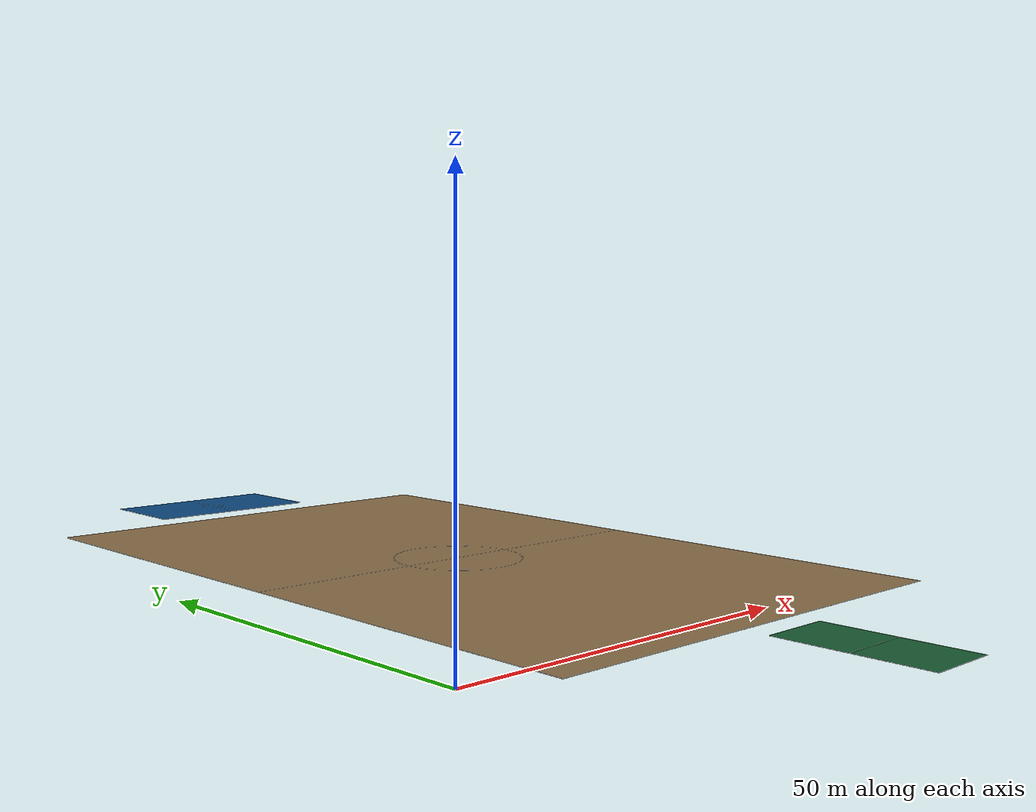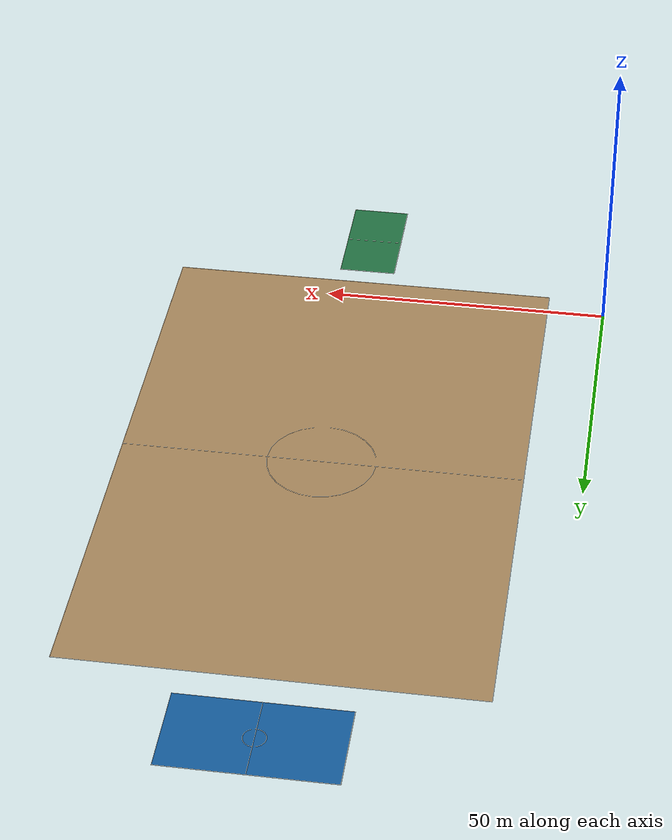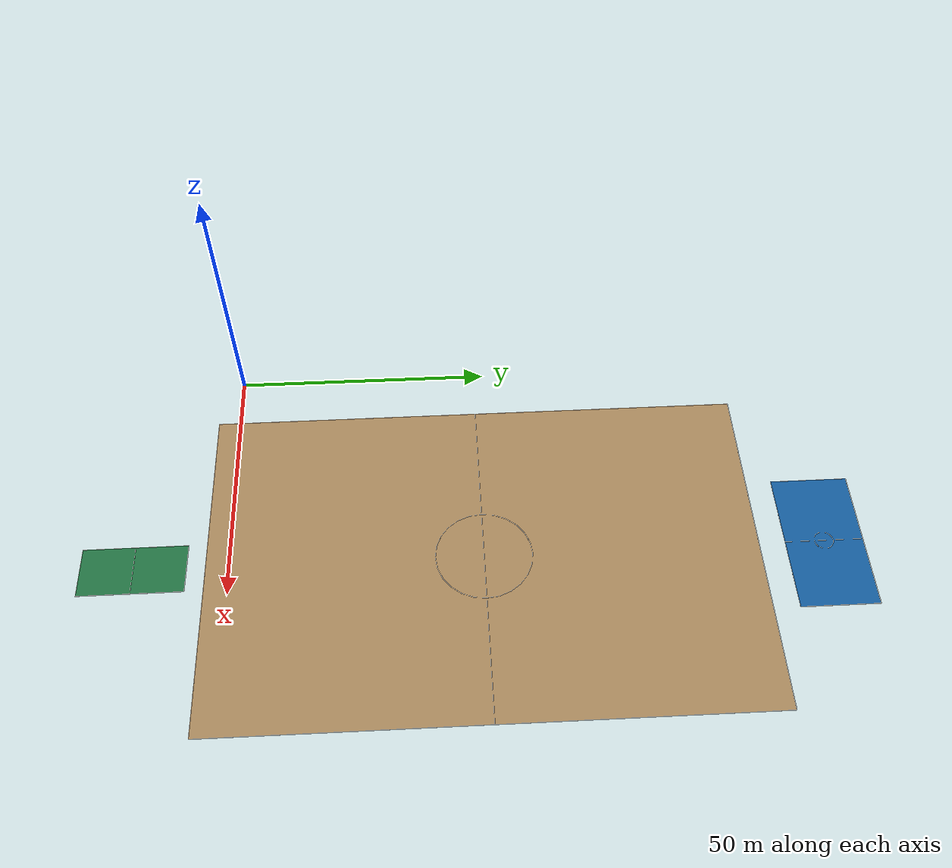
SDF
<?xml version="1.0"?>
<sdf version="1.9">
  <!-- Generated requested facilities only; markings are visual-only. -->
  <model name="drone_cju_track_stadium">
    <static>true</static>
    <link name="stadium_link">
      <visual name="stadium_field">
        <pose>44.0000 48.0000 0.0000 0 0 0.000000</pose>
        <cast_shadows>false</cast_shadows>
        <geometry><box><size>68.0000 105.0000 0.0200</size></box></geometry>
        <material>
          <ambient>0.62 0.5 0.34 1.0</ambient>
          <diffuse>0.62 0.5 0.34 1.0</diffuse>
          <specular>0.04 0.04 0.04 1</specular>
        </material>
      </visual>
      <visual name="basketball_court">
        <pose>44.0000 113.0000 0.0000 0 0 0.000000</pose>
        <cast_shadows>false</cast_shadows>
        <geometry><box><size>28.0000 15.0000 0.0200</size></box></geometry>
        <material>
          <ambient>0.07 0.34 0.58 1.0</ambient>
          <diffuse>0.07 0.34 0.58 1.0</diffuse>
          <specular>0.04 0.04 0.04 1</specular>
        </material>
      </visual>
      <visual name="jokgu_court">
        <pose>44.0000 -18.0000 0.0000 0 0 0.000000</pose>
        <cast_shadows>false</cast_shadows>
        <geometry><box><size>10.0000 20.0000 0.0200</size></box></geometry>
        <material>
          <ambient>0.12 0.42 0.24 1.0</ambient>
          <diffuse>0.12 0.42 0.24 1.0</diffuse>
          <specular>0.04 0.04 0.04 1</specular>
        </material>
      </visual>
      <visual name="stadium_field_line_east">
        <pose>78.0000 48.0000 0.0120 0 0 0.000000</pose>
        <cast_shadows>false</cast_shadows>
        <geometry><box><size>0.0800 105.0000 0.0040</size></box></geometry>
        <material>
          <ambient>0.96 0.96 0.93 1.0</ambient>
          <diffuse>0.96 0.96 0.93 1.0</diffuse>
          <specular>0.04 0.04 0.04 1</specular>
        </material>
      </visual>
      <visual name="stadium_field_line_west">
        <pose>10.0000 48.0000 0.0120 0 0 0.000000</pose>
        <cast_shadows>false</cast_shadows>
        <geometry><box><size>0.0800 105.0000 0.0040</size></box></geometry>
        <material>
          <ambient>0.96 0.96 0.93 1.0</ambient>
          <diffuse>0.96 0.96 0.93 1.0</diffuse>
          <specular>0.04 0.04 0.04 1</specular>
        </material>
      </visual>
      <visual name="stadium_field_line_north">
        <pose>44.0000 100.5000 0.0120 0 0 0.000000</pose>
        <cast_shadows>false</cast_shadows>
        <geometry><box><size>68.0000 0.0800 0.0040</size></box></geometry>
        <material>
          <ambient>0.96 0.96 0.93 1.0</ambient>
          <diffuse>0.96 0.96 0.93 1.0</diffuse>
          <specular>0.04 0.04 0.04 1</specular>
        </material>
      </visual>
      <visual name="stadium_field_line_south">
        <pose>44.0000 -4.5000 0.0120 0 0 0.000000</pose>
        <cast_shadows>false</cast_shadows>
        <geometry><box><size>68.0000 0.0800 0.0040</size></box></geometry>
        <material>
          <ambient>0.96 0.96 0.93 1.0</ambient>
          <diffuse>0.96 0.96 0.93 1.0</diffuse>
          <specular>0.04 0.04 0.04 1</specular>
        </material>
      </visual>
      <visual name="stadium_field_line_halfway">
        <pose>44.0000 48.0000 0.0120 0 0 0.000000</pose>
        <cast_shadows>false</cast_shadows>
        <geometry><box><size>68.0000 0.0800 0.0040</size></box></geometry>
        <material>
          <ambient>0.96 0.96 0.93 1.0</ambient>
          <diffuse>0.96 0.96 0.93 1.0</diffuse>
          <specular>0.04 0.04 0.04 1</specular>
        </material>
      </visual>
      <visual name="stadium_field_line_circle_0">
        <pose>53.0717 49.1943 0.0120 0 0 1.701696</pose>
        <cast_shadows>false</cast_shadows>
        <geometry><box><size>2.4603 0.0800 0.0040</size></box></geometry>
        <material>
          <ambient>0.96 0.96 0.93 1.0</ambient>
          <diffuse>0.96 0.96 0.93 1.0</diffuse>
          <specular>0.04 0.04 0.04 1</specular>
        </material>
      </visual>
      <visual name="stadium_field_line_circle_1">
        <pose>52.4535 51.5016 0.0120 0 0 1.963495</pose>
        <cast_shadows>false</cast_shadows>
        <geometry><box><size>2.4603 0.0800 0.0040</size></box></geometry>
        <material>
          <ambient>0.96 0.96 0.93 1.0</ambient>
          <diffuse>0.96 0.96 0.93 1.0</diffuse>
          <specular>0.04 0.04 0.04 1</specular>
        </material>
      </visual>
      <visual name="stadium_field_line_circle_2">
        <pose>51.2592 53.5702 0.0120 0 0 2.225295</pose>
        <cast_shadows>false</cast_shadows>
        <geometry><box><size>2.4603 0.0800 0.0040</size></box></geometry>
        <material>
          <ambient>0.96 0.96 0.93 1.0</ambient>
          <diffuse>0.96 0.96 0.93 1.0</diffuse>
          <specular>0.04 0.04 0.04 1</specular>
        </material>
      </visual>
      <visual name="stadium_field_line_circle_3">
        <pose>49.5702 55.2592 0.0120 0 0 2.487094</pose>
        <cast_shadows>false</cast_shadows>
        <geometry><box><size>2.4603 0.0800 0.0040</size></box></geometry>
        <material>
          <ambient>0.96 0.96 0.93 1.0</ambient>
          <diffuse>0.96 0.96 0.93 1.0</diffuse>
          <specular>0.04 0.04 0.04 1</specular>
        </material>
      </visual>
      <visual name="stadium_field_line_circle_4">
        <pose>47.5016 56.4535 0.0120 0 0 2.748894</pose>
        <cast_shadows>false</cast_shadows>
        <geometry><box><size>2.4603 0.0800 0.0040</size></box></geometry>
        <material>
          <ambient>0.96 0.96 0.93 1.0</ambient>
          <diffuse>0.96 0.96 0.93 1.0</diffuse>
          <specular>0.04 0.04 0.04 1</specular>
        </material>
      </visual>
      <visual name="stadium_field_line_circle_5">
        <pose>45.1943 57.0717 0.0120 0 0 3.010693</pose>
        <cast_shadows>false</cast_shadows>
        <geometry><box><size>2.4603 0.0800 0.0040</size></box></geometry>
        <material>
          <ambient>0.96 0.96 0.93 1.0</ambient>
          <diffuse>0.96 0.96 0.93 1.0</diffuse>
          <specular>0.04 0.04 0.04 1</specular>
        </material>
      </visual>
      <visual name="stadium_field_line_circle_6">
        <pose>42.8057 57.0717 0.0120 0 0 3.272492</pose>
        <cast_shadows>false</cast_shadows>
        <geometry><box><size>2.4603 0.0800 0.0040</size></box></geometry>
        <material>
          <ambient>0.96 0.96 0.93 1.0</ambient>
          <diffuse>0.96 0.96 0.93 1.0</diffuse>
          <specular>0.04 0.04 0.04 1</specular>
        </material>
      </visual>
      <visual name="stadium_field_line_circle_7">
        <pose>40.4984 56.4535 0.0120 0 0 3.534292</pose>
        <cast_shadows>false</cast_shadows>
        <geometry><box><size>2.4603 0.0800 0.0040</size></box></geometry>
        <material>
          <ambient>0.96 0.96 0.93 1.0</ambient>
          <diffuse>0.96 0.96 0.93 1.0</diffuse>
          <specular>0.04 0.04 0.04 1</specular>
        </material>
      </visual>
      <visual name="stadium_field_line_circle_8">
        <pose>38.4298 55.2592 0.0120 0 0 3.796091</pose>
        <cast_shadows>false</cast_shadows>
        <geometry><box><size>2.4603 0.0800 0.0040</size></box></geometry>
        <material>
          <ambient>0.96 0.96 0.93 1.0</ambient>
          <diffuse>0.96 0.96 0.93 1.0</diffuse>
          <specular>0.04 0.04 0.04 1</specular>
        </material>
      </visual>
      <visual name="stadium_field_line_circle_9">
        <pose>36.7408 53.5702 0.0120 0 0 4.057891</pose>
        <cast_shadows>false</cast_shadows>
        <geometry><box><size>2.4603 0.0800 0.0040</size></box></geometry>
        <material>
          <ambient>0.96 0.96 0.93 1.0</ambient>
          <diffuse>0.96 0.96 0.93 1.0</diffuse>
          <specular>0.04 0.04 0.04 1</specular>
        </material>
      </visual>
      <visual name="stadium_field_line_circle_10">
        <pose>35.5465 51.5016 0.0120 0 0 4.319690</pose>
        <cast_shadows>false</cast_shadows>
        <geometry><box><size>2.4603 0.0800 0.0040</size></box></geometry>
        <material>
          <ambient>0.96 0.96 0.93 1.0</ambient>
          <diffuse>0.96 0.96 0.93 1.0</diffuse>
          <specular>0.04 0.04 0.04 1</specular>
        </material>
      </visual>
      <visual name="stadium_field_line_circle_11">
        <pose>34.9283 49.1943 0.0120 0 0 4.581489</pose>
        <cast_shadows>false</cast_shadows>
        <geometry><box><size>2.4603 0.0800 0.0040</size></box></geometry>
        <material>
          <ambient>0.96 0.96 0.93 1.0</ambient>
          <diffuse>0.96 0.96 0.93 1.0</diffuse>
          <specular>0.04 0.04 0.04 1</specular>
        </material>
      </visual>
      <visual name="stadium_field_line_circle_12">
        <pose>34.9283 46.8057 0.0120 0 0 4.843289</pose>
        <cast_shadows>false</cast_shadows>
        <geometry><box><size>2.4603 0.0800 0.0040</size></box></geometry>
        <material>
          <ambient>0.96 0.96 0.93 1.0</ambient>
          <diffuse>0.96 0.96 0.93 1.0</diffuse>
          <specular>0.04 0.04 0.04 1</specular>
        </material>
      </visual>
      <visual name="stadium_field_line_circle_13">
        <pose>35.5465 44.4984 0.0120 0 0 5.105088</pose>
        <cast_shadows>false</cast_shadows>
        <geometry><box><size>2.4603 0.0800 0.0040</size></box></geometry>
        <material>
          <ambient>0.96 0.96 0.93 1.0</ambient>
          <diffuse>0.96 0.96 0.93 1.0</diffuse>
          <specular>0.04 0.04 0.04 1</specular>
        </material>
      </visual>
      <visual name="stadium_field_line_circle_14">
        <pose>36.7408 42.4298 0.0120 0 0 5.366887</pose>
        <cast_shadows>false</cast_shadows>
        <geometry><box><size>2.4603 0.0800 0.0040</size></box></geometry>
        <material>
          <ambient>0.96 0.96 0.93 1.0</ambient>
          <diffuse>0.96 0.96 0.93 1.0</diffuse>
          <specular>0.04 0.04 0.04 1</specular>
        </material>
      </visual>
      <visual name="stadium_field_line_circle_15">
        <pose>38.4298 40.7408 0.0120 0 0 5.628687</pose>
        <cast_shadows>false</cast_shadows>
        <geometry><box><size>2.4603 0.0800 0.0040</size></box></geometry>
        <material>
          <ambient>0.96 0.96 0.93 1.0</ambient>
          <diffuse>0.96 0.96 0.93 1.0</diffuse>
          <specular>0.04 0.04 0.04 1</specular>
        </material>
      </visual>
      <visual name="stadium_field_line_circle_16">
        <pose>40.4984 39.5465 0.0120 0 0 5.890486</pose>
        <cast_shadows>false</cast_shadows>
        <geometry><box><size>2.4603 0.0800 0.0040</size></box></geometry>
        <material>
          <ambient>0.96 0.96 0.93 1.0</ambient>
          <diffuse>0.96 0.96 0.93 1.0</diffuse>
          <specular>0.04 0.04 0.04 1</specular>
        </material>
      </visual>
      <visual name="stadium_field_line_circle_17">
        <pose>42.8057 38.9283 0.0120 0 0 6.152286</pose>
        <cast_shadows>false</cast_shadows>
        <geometry><box><size>2.4603 0.0800 0.0040</size></box></geometry>
        <material>
          <ambient>0.96 0.96 0.93 1.0</ambient>
          <diffuse>0.96 0.96 0.93 1.0</diffuse>
          <specular>0.04 0.04 0.04 1</specular>
        </material>
      </visual>
      <visual name="stadium_field_line_circle_18">
        <pose>45.1943 38.9283 0.0120 0 0 6.414085</pose>
        <cast_shadows>false</cast_shadows>
        <geometry><box><size>2.4603 0.0800 0.0040</size></box></geometry>
        <material>
          <ambient>0.96 0.96 0.93 1.0</ambient>
          <diffuse>0.96 0.96 0.93 1.0</diffuse>
          <specular>0.04 0.04 0.04 1</specular>
        </material>
      </visual>
      <visual name="stadium_field_line_circle_19">
        <pose>47.5016 39.5465 0.0120 0 0 6.675884</pose>
        <cast_shadows>false</cast_shadows>
        <geometry><box><size>2.4603 0.0800 0.0040</size></box></geometry>
        <material>
          <ambient>0.96 0.96 0.93 1.0</ambient>
          <diffuse>0.96 0.96 0.93 1.0</diffuse>
          <specular>0.04 0.04 0.04 1</specular>
        </material>
      </visual>
      <visual name="stadium_field_line_circle_20">
        <pose>49.5702 40.7408 0.0120 0 0 6.937684</pose>
        <cast_shadows>false</cast_shadows>
        <geometry><box><size>2.4603 0.0800 0.0040</size></box></geometry>
        <material>
          <ambient>0.96 0.96 0.93 1.0</ambient>
          <diffuse>0.96 0.96 0.93 1.0</diffuse>
          <specular>0.04 0.04 0.04 1</specular>
        </material>
      </visual>
      <visual name="stadium_field_line_circle_21">
        <pose>51.2592 42.4298 0.0120 0 0 7.199483</pose>
        <cast_shadows>false</cast_shadows>
        <geometry><box><size>2.4603 0.0800 0.0040</size></box></geometry>
        <material>
          <ambient>0.96 0.96 0.93 1.0</ambient>
          <diffuse>0.96 0.96 0.93 1.0</diffuse>
          <specular>0.04 0.04 0.04 1</specular>
        </material>
      </visual>
      <visual name="stadium_field_line_circle_22">
        <pose>52.4535 44.4984 0.0120 0 0 7.461283</pose>
        <cast_shadows>false</cast_shadows>
        <geometry><box><size>2.4603 0.0800 0.0040</size></box></geometry>
        <material>
          <ambient>0.96 0.96 0.93 1.0</ambient>
          <diffuse>0.96 0.96 0.93 1.0</diffuse>
          <specular>0.04 0.04 0.04 1</specular>
        </material>
      </visual>
      <visual name="stadium_field_line_circle_23">
        <pose>53.0717 46.8057 0.0120 0 0 7.723082</pose>
        <cast_shadows>false</cast_shadows>
        <geometry><box><size>2.4603 0.0800 0.0040</size></box></geometry>
        <material>
          <ambient>0.96 0.96 0.93 1.0</ambient>
          <diffuse>0.96 0.96 0.93 1.0</diffuse>
          <specular>0.04 0.04 0.04 1</specular>
        </material>
      </visual>
      <visual name="basketball_court_line_east">
        <pose>58.0000 113.0000 0.0120 0 0 0.000000</pose>
        <cast_shadows>false</cast_shadows>
        <geometry><box><size>0.0800 15.0000 0.0040</size></box></geometry>
        <material>
          <ambient>0.96 0.96 0.93 1.0</ambient>
          <diffuse>0.96 0.96 0.93 1.0</diffuse>
          <specular>0.04 0.04 0.04 1</specular>
        </material>
      </visual>
      <visual name="basketball_court_line_west">
        <pose>30.0000 113.0000 0.0120 0 0 0.000000</pose>
        <cast_shadows>false</cast_shadows>
        <geometry><box><size>0.0800 15.0000 0.0040</size></box></geometry>
        <material>
          <ambient>0.96 0.96 0.93 1.0</ambient>
          <diffuse>0.96 0.96 0.93 1.0</diffuse>
          <specular>0.04 0.04 0.04 1</specular>
        </material>
      </visual>
      <visual name="basketball_court_line_north">
        <pose>44.0000 120.5000 0.0120 0 0 0.000000</pose>
        <cast_shadows>false</cast_shadows>
        <geometry><box><size>28.0000 0.0800 0.0040</size></box></geometry>
        <material>
          <ambient>0.96 0.96 0.93 1.0</ambient>
          <diffuse>0.96 0.96 0.93 1.0</diffuse>
          <specular>0.04 0.04 0.04 1</specular>
        </material>
      </visual>
      <visual name="basketball_court_line_south">
        <pose>44.0000 105.5000 0.0120 0 0 0.000000</pose>
        <cast_shadows>false</cast_shadows>
        <geometry><box><size>28.0000 0.0800 0.0040</size></box></geometry>
        <material>
          <ambient>0.96 0.96 0.93 1.0</ambient>
          <diffuse>0.96 0.96 0.93 1.0</diffuse>
          <specular>0.04 0.04 0.04 1</specular>
        </material>
      </visual>
      <visual name="basketball_court_line_halfway">
        <pose>44.0000 113.0000 0.0120 0 0 0.000000</pose>
        <cast_shadows>false</cast_shadows>
        <geometry><box><size>0.0800 15.0000 0.0040</size></box></geometry>
        <material>
          <ambient>0.96 0.96 0.93 1.0</ambient>
          <diffuse>0.96 0.96 0.93 1.0</diffuse>
          <specular>0.04 0.04 0.04 1</specular>
        </material>
      </visual>
      <visual name="basketball_court_line_circle_0">
        <pose>45.7654 113.3512 0.0120 0 0 1.767146</pose>
        <cast_shadows>false</cast_shadows>
        <geometry><box><size>0.7234 0.0800 0.0040</size></box></geometry>
        <material>
          <ambient>0.96 0.96 0.93 1.0</ambient>
          <diffuse>0.96 0.96 0.93 1.0</diffuse>
          <specular>0.04 0.04 0.04 1</specular>
        </material>
      </visual>
      <visual name="basketball_court_line_circle_1">
        <pose>45.4966 114.0000 0.0120 0 0 2.159845</pose>
        <cast_shadows>false</cast_shadows>
        <geometry><box><size>0.7234 0.0800 0.0040</size></box></geometry>
        <material>
          <ambient>0.96 0.96 0.93 1.0</ambient>
          <diffuse>0.96 0.96 0.93 1.0</diffuse>
          <specular>0.04 0.04 0.04 1</specular>
        </material>
      </visual>
      <visual name="basketball_court_line_circle_2">
        <pose>45.0000 114.4966 0.0120 0 0 2.552544</pose>
        <cast_shadows>false</cast_shadows>
        <geometry><box><size>0.7234 0.0800 0.0040</size></box></geometry>
        <material>
          <ambient>0.96 0.96 0.93 1.0</ambient>
          <diffuse>0.96 0.96 0.93 1.0</diffuse>
          <specular>0.04 0.04 0.04 1</specular>
        </material>
      </visual>
      <visual name="basketball_court_line_circle_3">
        <pose>44.3512 114.7654 0.0120 0 0 2.945243</pose>
        <cast_shadows>false</cast_shadows>
        <geometry><box><size>0.7234 0.0800 0.0040</size></box></geometry>
        <material>
          <ambient>0.96 0.96 0.93 1.0</ambient>
          <diffuse>0.96 0.96 0.93 1.0</diffuse>
          <specular>0.04 0.04 0.04 1</specular>
        </material>
      </visual>
      <visual name="basketball_court_line_circle_4">
        <pose>43.6488 114.7654 0.0120 0 0 3.337942</pose>
        <cast_shadows>false</cast_shadows>
        <geometry><box><size>0.7234 0.0800 0.0040</size></box></geometry>
        <material>
          <ambient>0.96 0.96 0.93 1.0</ambient>
          <diffuse>0.96 0.96 0.93 1.0</diffuse>
          <specular>0.04 0.04 0.04 1</specular>
        </material>
      </visual>
      <visual name="basketball_court_line_circle_5">
        <pose>43.0000 114.4966 0.0120 0 0 3.730641</pose>
        <cast_shadows>false</cast_shadows>
        <geometry><box><size>0.7234 0.0800 0.0040</size></box></geometry>
        <material>
          <ambient>0.96 0.96 0.93 1.0</ambient>
          <diffuse>0.96 0.96 0.93 1.0</diffuse>
          <specular>0.04 0.04 0.04 1</specular>
        </material>
      </visual>
      <visual name="basketball_court_line_circle_6">
        <pose>42.5034 114.0000 0.0120 0 0 4.123340</pose>
        <cast_shadows>false</cast_shadows>
        <geometry><box><size>0.7234 0.0800 0.0040</size></box></geometry>
        <material>
          <ambient>0.96 0.96 0.93 1.0</ambient>
          <diffuse>0.96 0.96 0.93 1.0</diffuse>
          <specular>0.04 0.04 0.04 1</specular>
        </material>
      </visual>
      <visual name="basketball_court_line_circle_7">
        <pose>42.2346 113.3512 0.0120 0 0 4.516039</pose>
        <cast_shadows>false</cast_shadows>
        <geometry><box><size>0.7234 0.0800 0.0040</size></box></geometry>
        <material>
          <ambient>0.96 0.96 0.93 1.0</ambient>
          <diffuse>0.96 0.96 0.93 1.0</diffuse>
          <specular>0.04 0.04 0.04 1</specular>
        </material>
      </visual>
      <visual name="basketball_court_line_circle_8">
        <pose>42.2346 112.6488 0.0120 0 0 4.908739</pose>
        <cast_shadows>false</cast_shadows>
        <geometry><box><size>0.7234 0.0800 0.0040</size></box></geometry>
        <material>
          <ambient>0.96 0.96 0.93 1.0</ambient>
          <diffuse>0.96 0.96 0.93 1.0</diffuse>
          <specular>0.04 0.04 0.04 1</specular>
        </material>
      </visual>
      <visual name="basketball_court_line_circle_9">
        <pose>42.5034 112.0000 0.0120 0 0 5.301438</pose>
        <cast_shadows>false</cast_shadows>
        <geometry><box><size>0.7234 0.0800 0.0040</size></box></geometry>
        <material>
          <ambient>0.96 0.96 0.93 1.0</ambient>
          <diffuse>0.96 0.96 0.93 1.0</diffuse>
          <specular>0.04 0.04 0.04 1</specular>
        </material>
      </visual>
      <visual name="basketball_court_line_circle_10">
        <pose>43.0000 111.5034 0.0120 0 0 5.694137</pose>
        <cast_shadows>false</cast_shadows>
        <geometry><box><size>0.7234 0.0800 0.0040</size></box></geometry>
        <material>
          <ambient>0.96 0.96 0.93 1.0</ambient>
          <diffuse>0.96 0.96 0.93 1.0</diffuse>
          <specular>0.04 0.04 0.04 1</specular>
        </material>
      </visual>
      <visual name="basketball_court_line_circle_11">
        <pose>43.6488 111.2346 0.0120 0 0 6.086836</pose>
        <cast_shadows>false</cast_shadows>
        <geometry><box><size>0.7234 0.0800 0.0040</size></box></geometry>
        <material>
          <ambient>0.96 0.96 0.93 1.0</ambient>
          <diffuse>0.96 0.96 0.93 1.0</diffuse>
          <specular>0.04 0.04 0.04 1</specular>
        </material>
      </visual>
      <visual name="basketball_court_line_circle_12">
        <pose>44.3512 111.2346 0.0120 0 0 6.479535</pose>
        <cast_shadows>false</cast_shadows>
        <geometry><box><size>0.7234 0.0800 0.0040</size></box></geometry>
        <material>
          <ambient>0.96 0.96 0.93 1.0</ambient>
          <diffuse>0.96 0.96 0.93 1.0</diffuse>
          <specular>0.04 0.04 0.04 1</specular>
        </material>
      </visual>
      <visual name="basketball_court_line_circle_13">
        <pose>45.0000 111.5034 0.0120 0 0 6.872234</pose>
        <cast_shadows>false</cast_shadows>
        <geometry><box><size>0.7234 0.0800 0.0040</size></box></geometry>
        <material>
          <ambient>0.96 0.96 0.93 1.0</ambient>
          <diffuse>0.96 0.96 0.93 1.0</diffuse>
          <specular>0.04 0.04 0.04 1</specular>
        </material>
      </visual>
      <visual name="basketball_court_line_circle_14">
        <pose>45.4966 112.0000 0.0120 0 0 7.264933</pose>
        <cast_shadows>false</cast_shadows>
        <geometry><box><size>0.7234 0.0800 0.0040</size></box></geometry>
        <material>
          <ambient>0.96 0.96 0.93 1.0</ambient>
          <diffuse>0.96 0.96 0.93 1.0</diffuse>
          <specular>0.04 0.04 0.04 1</specular>
        </material>
      </visual>
      <visual name="basketball_court_line_circle_15">
        <pose>45.7654 112.6488 0.0120 0 0 7.657632</pose>
        <cast_shadows>false</cast_shadows>
        <geometry><box><size>0.7234 0.0800 0.0040</size></box></geometry>
        <material>
          <ambient>0.96 0.96 0.93 1.0</ambient>
          <diffuse>0.96 0.96 0.93 1.0</diffuse>
          <specular>0.04 0.04 0.04 1</specular>
        </material>
      </visual>
      <visual name="jokgu_court_line_east">
        <pose>49.0000 -18.0000 0.0120 0 0 0.000000</pose>
        <cast_shadows>false</cast_shadows>
        <geometry><box><size>0.0800 20.0000 0.0040</size></box></geometry>
        <material>
          <ambient>0.96 0.96 0.93 1.0</ambient>
          <diffuse>0.96 0.96 0.93 1.0</diffuse>
          <specular>0.04 0.04 0.04 1</specular>
        </material>
      </visual>
      <visual name="jokgu_court_line_west">
        <pose>39.0000 -18.0000 0.0120 0 0 0.000000</pose>
        <cast_shadows>false</cast_shadows>
        <geometry><box><size>0.0800 20.0000 0.0040</size></box></geometry>
        <material>
          <ambient>0.96 0.96 0.93 1.0</ambient>
          <diffuse>0.96 0.96 0.93 1.0</diffuse>
          <specular>0.04 0.04 0.04 1</specular>
        </material>
      </visual>
      <visual name="jokgu_court_line_north">
        <pose>44.0000 -8.0000 0.0120 0 0 0.000000</pose>
        <cast_shadows>false</cast_shadows>
        <geometry><box><size>10.0000 0.0800 0.0040</size></box></geometry>
        <material>
          <ambient>0.96 0.96 0.93 1.0</ambient>
          <diffuse>0.96 0.96 0.93 1.0</diffuse>
          <specular>0.04 0.04 0.04 1</specular>
        </material>
      </visual>
      <visual name="jokgu_court_line_south">
        <pose>44.0000 -28.0000 0.0120 0 0 0.000000</pose>
        <cast_shadows>false</cast_shadows>
        <geometry><box><size>10.0000 0.0800 0.0040</size></box></geometry>
        <material>
          <ambient>0.96 0.96 0.93 1.0</ambient>
          <diffuse>0.96 0.96 0.93 1.0</diffuse>
          <specular>0.04 0.04 0.04 1</specular>
        </material>
      </visual>
      <visual name="jokgu_court_line_halfway">
        <pose>44.0000 -18.0000 0.0120 0 0 0.000000</pose>
        <cast_shadows>false</cast_shadows>
        <geometry><box><size>10.0000 0.0800 0.0040</size></box></geometry>
        <material>
          <ambient>0.96 0.96 0.93 1.0</ambient>
          <diffuse>0.96 0.96 0.93 1.0</diffuse>
          <specular>0.04 0.04 0.04 1</specular>
        </material>
      </visual>
    </link>
  </model>
</sdf>
